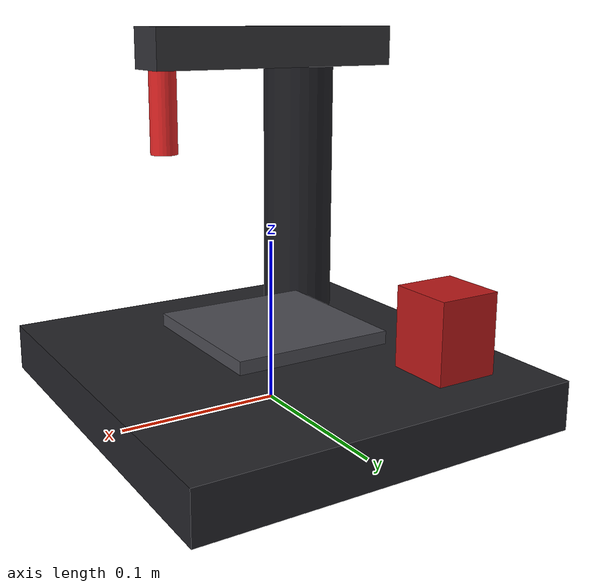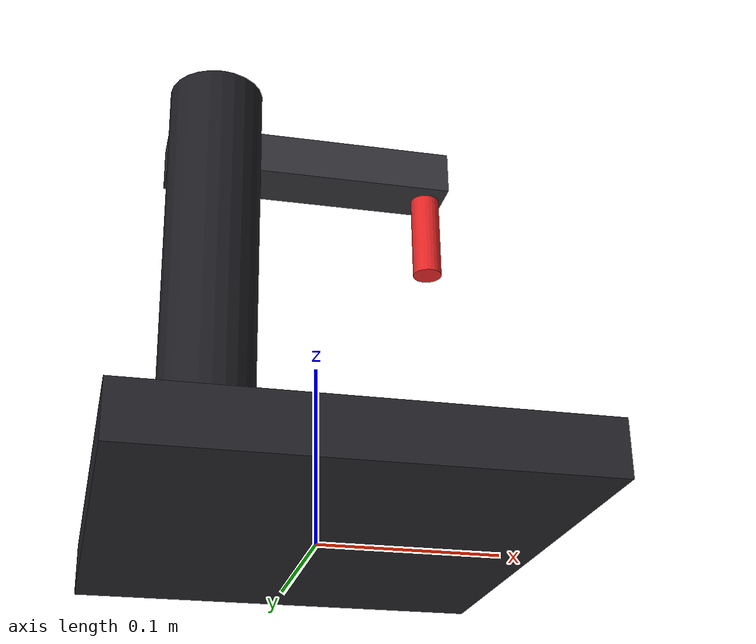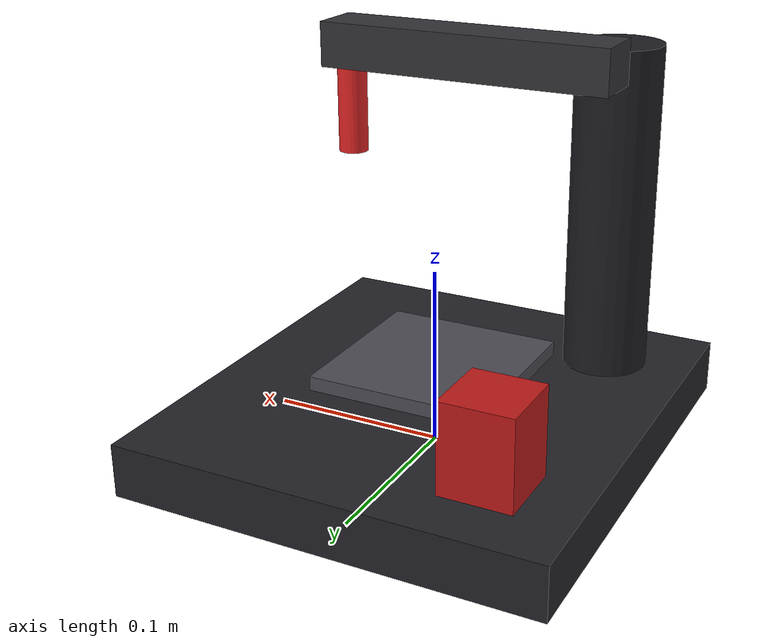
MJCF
<?xml version="1.0" encoding="utf-8"?>
<mujoco model="real_lab_nagoya_university_palm">
  <compiler angle="radian" autolimits="true"/>
  <default>
    <default class="body"><geom contype="1" conaffinity="1"/></default>
  </default>
  <worldbody>
    <body name="base">
      <geom type="box" size="0.12 0.13 0.015" pos="0 0 0.015" rgba="0.14 0.14 0.16 1" class="body"/>
      <geom type="cylinder" size="0.024 0.1" pos="-0.07 -0.08 0.115" rgba="0.12 0.12 0.14 1" class="body"/>
      <geom type="box" size="0.05 0.05 0.004" pos="0.0 0.0 0.045" rgba="0.3 0.3 0.33 1" class="body"/>
      <geom type="box" size="0.02 0.02 0.03" pos="-0.07 0.08 0.05" rgba="0.75 0.1 0.1 1" class="body"/>
      <body name="laser_arm" pos="-0.07 -0.02 0.215">
        <joint name="laser_arm_joint" type="hinge" axis="0 0 1" range="-1.57 0" damping="0.6" frictionloss="0.2"/>
  <geom type="box" size="0.08 0.015 0.012" pos="0.06 0 0" rgba="0.2 0.2 0.22 1" class="body"/>
  <geom type="cylinder" size="0.008 0.03" pos="0.13 0 -0.03" rgba="0.9 0.15 0.15 1" class="body"/>
      </body>
    </body>
  </worldbody>
</mujoco>
